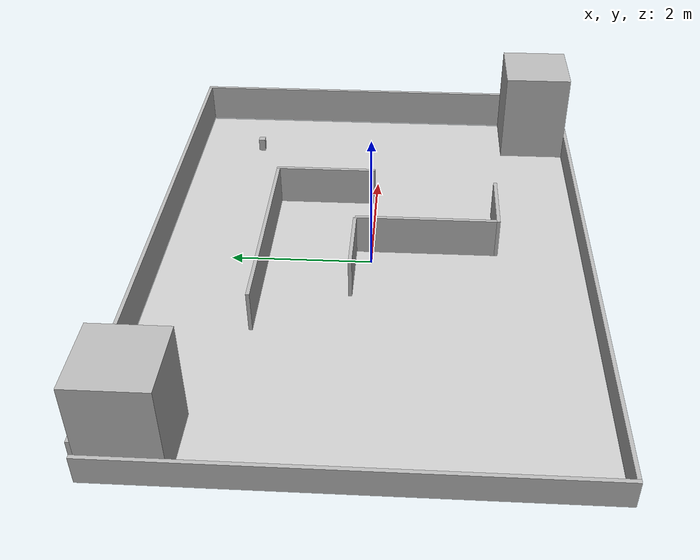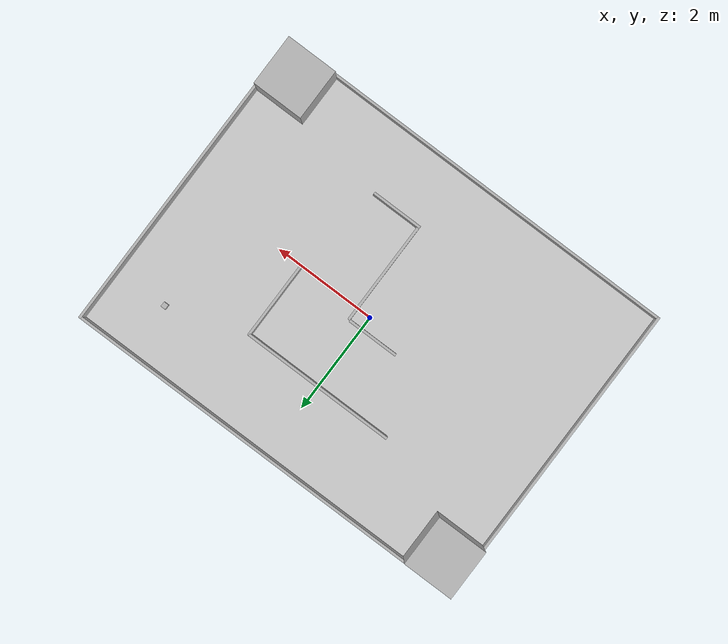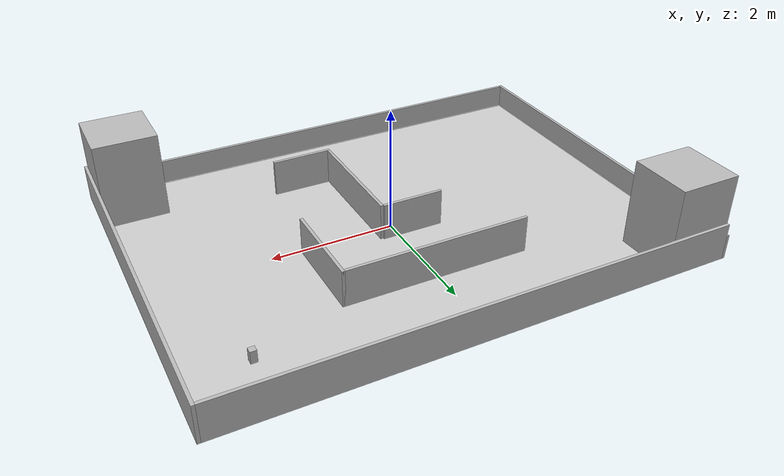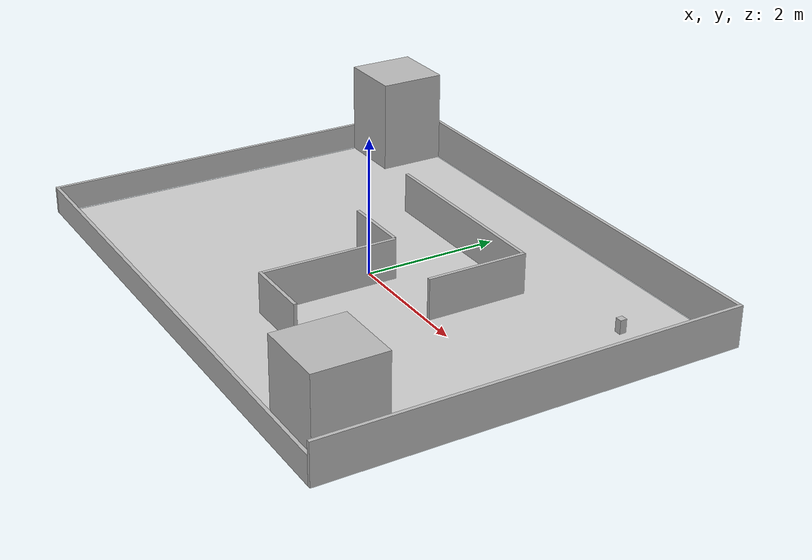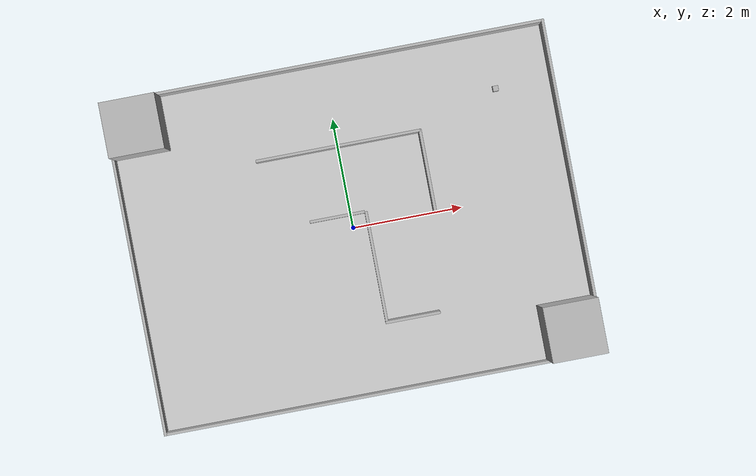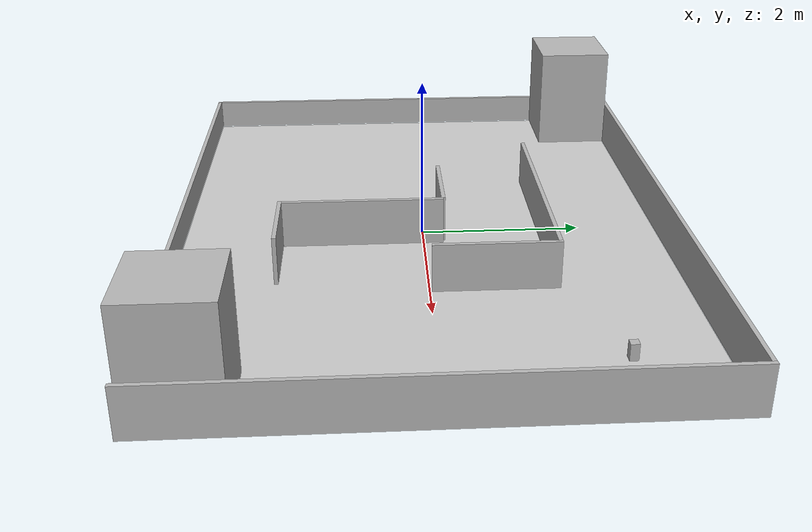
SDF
<?xml version="1.0" ?>
<sdf version="1.4">

  <world name='default'>
    <!-- A global light source -->
    <include>
      <uri>model://sun</uri>
    </include>
    <!-- A ground plane -->
    <include>
      <uri>model://ground_plane</uri>
    </include>

<model name="floor_automatica_area">
      <static>true</static>
      <link name="link">
      <pose>0 0 0 0 0 0</pose>
        <visual name="visual">
          <cast_shadows>false</cast_shadows>
          <geometry>
            <plane>
              <normal>0 0 1</normal>
              <size>8 6</size>
            </plane>
          </geometry>
          <material>
            <script>
              <name>carpet</name>
            </script>
          </material>
        </visual>
        <collision name="collision">
          <geometry>
            <plane>
              <normal>0 0 1</normal>
              <size>8 6</size>
            </plane>
          </geometry>
          <surface>
            <friction>
              <ode>
                <mu>100</mu>
                <mu2>50</mu2>
              </ode>
            </friction>
          </surface>
        </collision>
      </link>
    </model>

<!-- Source -->
  <model name="source">
    <static>true</static>
    <link name="source">
      <pose>-3.5 2.5 0.7  0 0 0</pose>
      <collision name="collision">
        <geometry>
          <box>
            <size>1.0 1.0 1.4</size>
          </box>
        </geometry>
      </collision>
      <visual name="visual">
        <geometry>
          <box>
            <size>1.0 1.0 1.4</size>
          </box>
        </geometry>
        <material>Gazebo/Blue</material>
      </visual>
      <gravity>1</gravity>
    </link>
  </model>

<!-- Drain -->
  <model name="drain">
    <static>true</static>
    <link name="drain">
      <pose>3.5 -2.5 0.7  0 0 0</pose>
      <collision name="collision">
        <geometry>
          <box>
           <size>1.0 1.0 1.4</size>
          </box>
        </geometry>
      </collision>
      <visual name="visual">
        <geometry>
          <box>
            <size>1.0 1.0 1.4</size>
          </box>
        </geometry>
        <material>Gazebo/Blue</material>
      </visual>
      <gravity>1</gravity>
    </link>
  </model>

<!-- Walls -->
  <model name="wall1">
    <static>true</static>
    <link name="wall1">
      <pose>-4.025 0 0.2  0 0 0</pose>
      <collision name="collision">
        <geometry>
          <box>
            <size>0.05 6.1 0.4</size>
          </box>
        </geometry>
      </collision>
      <visual name="visual">
        <geometry>
          <box>
            <size>0.05 6.1 0.4</size>
          </box>
        </geometry>
        <material>Gazebo/Blue</material>
      </visual>
      <gravity>1</gravity>
    </link>
  </model>

<model name="wall2">
    <static>true</static>
    <link name="wall2">
      <pose>4.025 0 0.3  0 0 0</pose>
      <collision name="collision">
        <geometry>
          <box>
            <size>0.05 6.1 0.6</size>
          </box>
        </geometry>
      </collision>
      <visual name="visual">
        <geometry>
          <box>
            <size>0.05 6.1 0.6</size>
          </box>
        </geometry>
        <material>Gazebo/Blue</material>
      </visual>
      <gravity>1</gravity>
    </link>
  </model>

<model name="wall3">
    <static>true</static>
    <link name="wall3">
      <pose>0 -3.025 0.2  0 0 0</pose>
      <collision name="collision">
        <geometry>
          <box>
            <size>8.0 0.05 0.4</size>
          </box>
        </geometry>
      </collision>
      <visual name="visual">
        <geometry>
          <box>
            <size>8.0 0.05 0.4</size>
          </box>
        </geometry>
        <material>Gazebo/Blue</material>
      </visual>
      <gravity>1</gravity>
    </link>
  </model>

<model name="wall4">
    <static>true</static>
    <link name="wall4">
      <pose>0 3.025 0.3  0 0 0</pose>
      <collision name="collision">
        <geometry>
          <box>
            <size>8.0 0.05 0.6</size>
          </box>
        </geometry>
      </collision>
      <visual name="visual">
        <geometry>
          <box>
            <size>8.0 0.05 0.6</size>
          </box>
        </geometry>
        <material>Gazebo/Blue</material>
      </visual>
      <gravity>1</gravity>
    </link>
  </model>

<!-- Obstacle top -->

<model name="obstacle11">
    <static>true</static>
    <link name="obstacle11">
      <pose>-0.0 1.5 0.3 0 0 0</pose>
      <collision name="collision">
        <geometry>
          <box>
            <size>3 0.05 0.6</size>
          </box>
        </geometry>
      </collision>
      <visual name="visual">
        <geometry>
          <box>
            <size>3.0 0.05 0.6</size>
          </box>
        </geometry>
        <material>Gazebo/Blue</material>
      </visual>
      <gravity>1</gravity>
    </link>
  </model>
<model name="obstacle12">
    <static>true</static>
    <link name="obstacle12">
      <pose>1.5 0.775 0.3  0 0 0</pose>
      <collision name="collision">
        <geometry>
          <box>
            <size>0.05 1.5 0.6</size>
          </box>
        </geometry>
      </collision>
      <visual name="visual">
        <geometry>
          <box>
            <size>0.05 1.5 0.6</size>
          </box>
        </geometry>
        <material>Gazebo/Blue</material>
      </visual>
      <gravity>1</gravity>
    </link>
  </model>

<!-- Obstacle bottom -->

<model name="obstacle21">
    <static>true</static>
    <link name="obstacle21">
      <pose>-0.25 0.25 0.3 0 0 0</pose>
      <collision name="collision">
        <geometry>
          <box>
            <size>1 0.05 0.6</size>
          </box>
        </geometry>
      </collision>
      <visual name="visual">
        <geometry>
          <box>
            <size>1.0 0.05 0.6</size>
          </box>
        </geometry>
        <material>Gazebo/Blue</material>
      </visual>
      <gravity>1</gravity>
    </link>
  </model>
<model name="obstacle22">
    <static>true</static>
    <link name="obstacle22">
      <pose>0.275 -0.75 0.3  0 0 0</pose>
      <collision name="collision">
        <geometry>
          <box>
            <size>0.05 2 0.6</size>
          </box>
        </geometry>
      </collision>
      <visual name="visual">
        <geometry>
          <box>
            <size>0.05 2 0.6</size>
          </box>
        </geometry>
        <material>Gazebo/Blue</material>
      </visual>
      <gravity>1</gravity>
    </link>
  </model>

<model name="obstacle23">
    <static>true</static>
    <link name="obstacle23">
      <pose>0.75 -1.775 0.3  0 0 0</pose>
      <collision name="collision">
        <geometry>
          <box>
            <size>1 0.05 0.6</size>
          </box>
        </geometry>
      </collision>
      <visual name="visual">
        <geometry>
          <box>
            <size>1 0.05 0.6</size>
          </box>
        </geometry>
        <material>Gazebo/Blue</material>
      </visual>
      <gravity>1</gravity>
    </link>
  </model>
<model name="Laserscanner_base">
    <static>true</static>
    <link name="laser_base">
      <pose>3 2 0.1 0 0 0</pose>
      <collision name="collision">
        <geometry>
          <box>
            <size>0.1 0.1 0.2</size>
          </box>
        </geometry>
      </collision>
      <visual name="visual">
        <geometry>
          <box>
            <size>0.1 0.1 0.2</size>
          </box>
        </geometry>
        <material>Gazebo/Blue</material>
      </visual>
      <gravity>1</gravity>
    </link>
  </model>

  </world>
</sdf>
